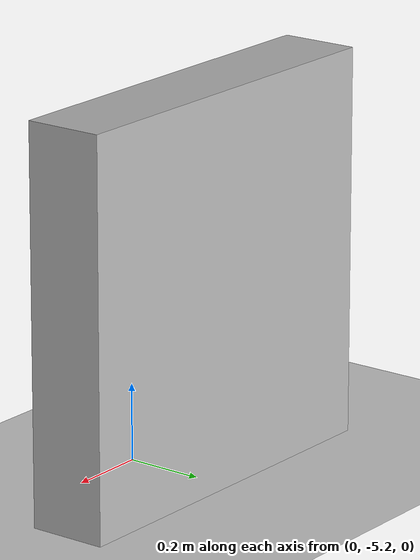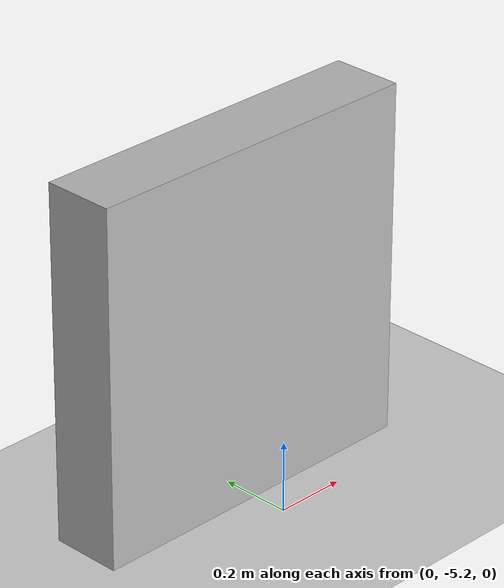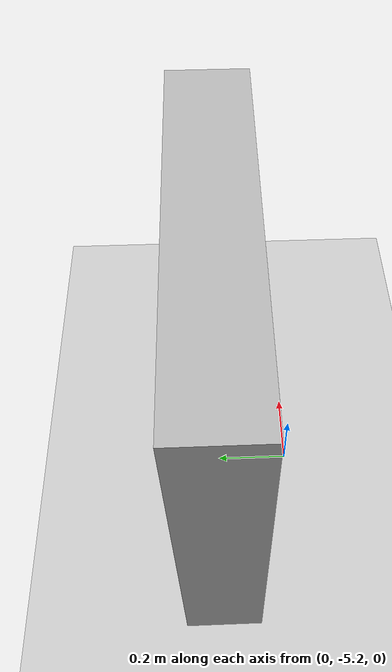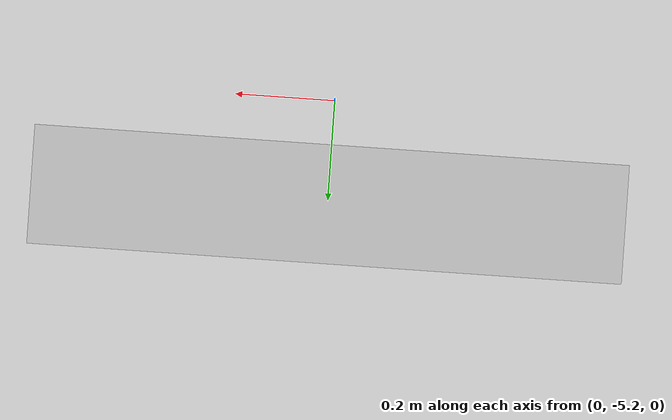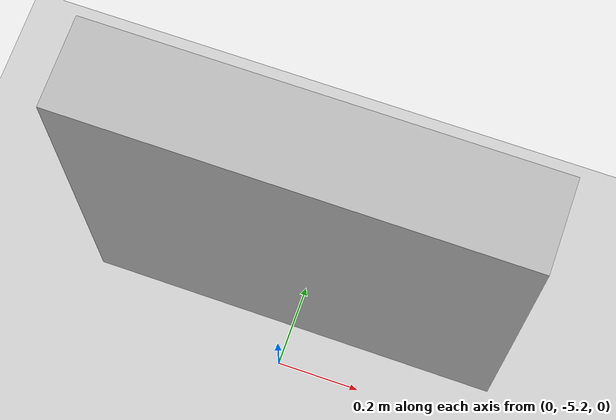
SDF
<sdf version="1.7">
 <world name="default">
  <physics type="ode">
   <ode>
    <solver>
     <type>quick</type>
     <iters>100</iters>
     <sor>1</sor>
     <use_dynamic_moi_rescaling>0</use_dynamic_moi_rescaling>
    </solver>
    <constraints>
     <cfm>0</cfm>
     <erp>0.2</erp>
     <contact_max_correcting_vel>0.1</contact_max_correcting_vel>
     <contact_surface_layer>0</contact_surface_layer>
    </constraints>
   </ode>
   <real_time_update_rate>400</real_time_update_rate>
   <max_step_size>0.0025</max_step_size>
   <real_time_factor>1</real_time_factor>
  </physics>
  <light name="sun" type="directional">
   <pose>0 0 10 0 -0 0</pose>
   <diffuse>0.8 0.8 0.8 1</diffuse>
   <specular>0.2 0.2 0.2 1</specular>
   <attenuation>
    <range>1000</range>
    <constant>0.9</constant>
    <linear>0.01</linear>
    <quadratic>0.001</quadratic>
   </attenuation>
   <direction>-0.5 0.1 -0.9</direction>
   <spot><inner_angle>0</inner_angle><outer_angle>0</outer_angle><falloff>0</falloff></spot>
  </light>
  <model name="three_d_aruco">
   <link name="link">
    <visual name="visual">
     <geometry><mesh><uri>model://three_d_aruco/meshes/model.dae</uri><scale>0.5 0.5 0.5</scale></mesh></geometry>
    </visual>
    <collision name="collision">
     <geometry><mesh><uri>model://three_d_aruco/meshes/model.dae</uri><scale>0.5 0.5 0.5</scale></mesh></geometry>
    </collision>
    <inertial>
     <inertia><ixx>1</ixx><ixy>0</ixy><ixz>0</ixz><iyy>1</iyy><iyz>0</iyz><izz>1</izz></inertia>
     <mass>1</mass>
    </inertial>
   </link>
   <pose>-0 -5 0.5 0 -3e-06 1.5708</pose>
  </model>
  <model name="ground_plane">
   <static>1</static>
   <link name="link">
    <collision name="collision">
     <geometry><plane><normal>0 0 1</normal><size>5000 5000</size></plane></geometry>
     <surface><friction><ode><mu>1</mu><mu2>1</mu2></ode></friction></surface>
    </collision>
    <visual name="runway">
     <pose>0 0 0.005 0 0 -1.5707</pose>
     <cast_shadows>0</cast_shadows>
     <geometry><plane><normal>0 0 1</normal><size>1829 45</size></plane></geometry>
     <material>
      <script><uri>file://media/materials/scripts/gazebo.material</uri><name>Gazebo/Runway</name></script>
     </material>
    </visual>
    <visual name="grass">
     <pose>0 0 -0.1 0 -0 0</pose>
     <cast_shadows>0</cast_shadows>
     <geometry><plane><normal>0 0 1</normal><size>5000 5000</size></plane></geometry>
     <material>
      <script><uri>file://media/materials/scripts/gazebo.material</uri><name>Gazebo/Grass</name></script>
     </material>
    </visual>
   </link>
  </model>
  <gravity>0 0 -9.8</gravity>
  <magnetic_field>6e-06 2.3e-05 -4.2e-05</magnetic_field>
  <atmosphere type="adiabatic"/>
  <scene><ambient>0.4 0.4 0.4 1</ambient><background>0.7 0.7 0.7 1</background><shadows>1</shadows></scene>
  <spherical_coordinates>
   <surface_model>EARTH_WGS84</surface_model>
   <latitude_deg>0</latitude_deg>
   <longitude_deg>0</longitude_deg>
   <elevation>0</elevation>
   <heading_deg>0</heading_deg>
  </spherical_coordinates>
 </world>
</sdf>
